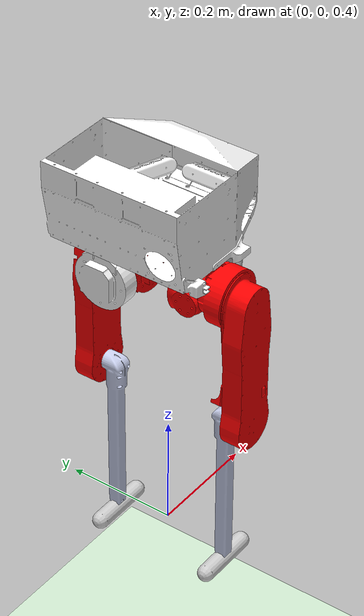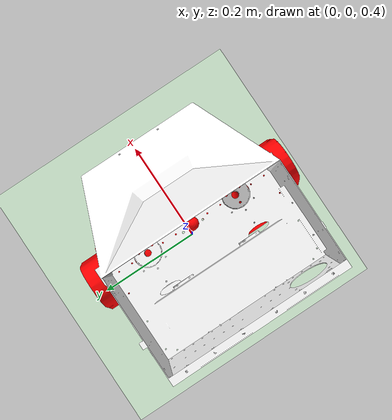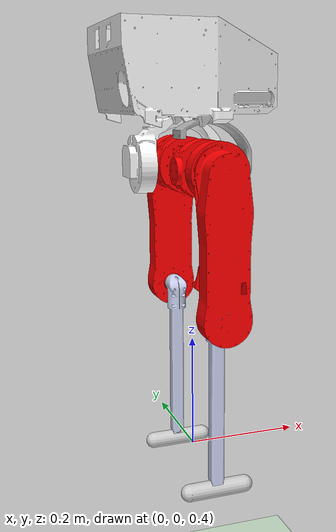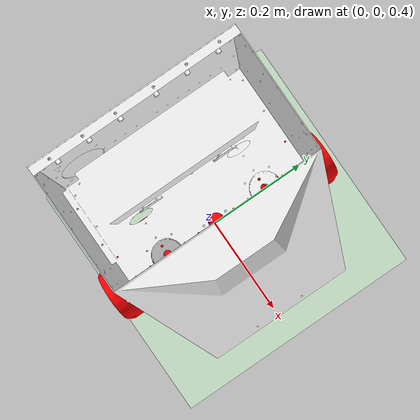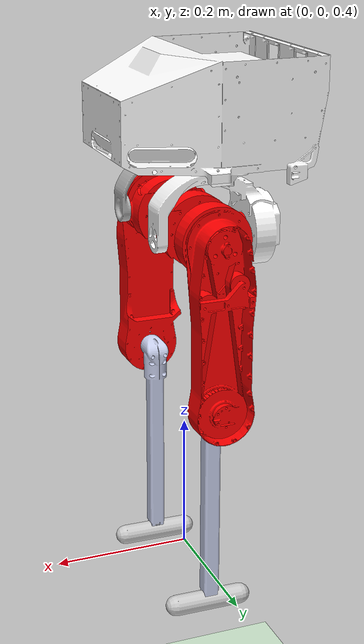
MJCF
<mujoco model="biped">
  <compiler angle="radian" meshdir="../meshes/" autolimits="true"/>
  <option integrator="RK4"/>
  <default/>
  <asset>
    <mesh name="base_link" file="base_link_v2.STL"/>
    <mesh name="R_HIP" file="R_HIP.STL"/>
    <mesh name="R_SHOULDER" file="R_SHOULDER.STL"/>
    <mesh name="R_UPPER_LEG" file="R_UPPER_LEG.STL"/>
    <mesh name="R_LOWER_LEG" file="R_LOWER_LEG.STL"/>
    <mesh name="R_FOOT" file="R_FOOT.STL"/>
    <mesh name="L_HIP" file="L_HIP.STL"/>
    <mesh name="L_SHOULDER" file="L_SHOULDER.STL"/>
    <mesh name="L_UPPER_LEG" file="L_UPPER_LEG.STL"/>
    <mesh name="L_LOWER_LEG" file="L_LOWER_LEG.STL"/>
    <mesh name="L_FOOT" file="L_FOOT.STL"/>

    <texture type="skybox" builtin="gradient" width="128" height="128" rgb1=".4 .6 .8" rgb2="0 0 0"/>

    <hfield name="hill" nrow="400" ncol="400" size="8 8 1 1"/>

    <texture builtin="checker" height="100" name="texplane" rgb1="0.14 0.31 0.27" rgb2="0.47 0.63 0.6" type="2d" width="100"/>
    <material name="MatPlane" reflectance="0.5" shininess="1" specular="1" texrepeat="60 60"  texture="texplane"/>

  </asset>

    <equality>
		<weld body1="base_link" solimp="1.0 1.0 1.0" solref="0.06 1"></weld>
	</equality>

  <sensor>
    <gyro name="gyro" site="imu_location" />
    <accelerometer name="accelerometer" site="imu_location" />
  </sensor>

  <worldbody>
    <light cutoff="100" diffuse="1 1 1" dir="-0 0 -1.3" directional="true" exponent="1" pos="0 0 1.3" specular=".1 .1 .1"/>
    <geom name="floor" friction="1 .1 .1" condim="3" material="MatPlane" pos="0 0 0" rgba="0.8 0.9 0.8 1" size="40 40 0.01" type="plane"/>

    <body name="base_link" pos="0.0 0.0 1.0">
      <inertial pos="-0.1048 0 0.068" quat="1. 0. 0. 0." mass="3.272" diaginertia="0.018 0.030 0.026" />
      <geom name="base_link" type="mesh" contype="2" rgba="1 1 1 1" mesh="base_link"/>
      <joint armature="0" damping="0" limited="false" name="root" pos="0 0 0" stiffness="0" type="free"/>
      <site name="imu_location" pos="0 0 0" euler="-3.141592 0 0" size="0.01" type="sphere" rgba="1 0 0 1"/>

      <body name="L_HIP" pos="0 0.07 -0.005">
        <inertial pos="-0.0542 0 -0.072" mass="0.624" diaginertia="0.0018 0.001 0.001"/>
        <joint name="L_YAW" pos="0 0 0" axis="0 0 1" limited="true" range="-0.3 0.3"/>
        <geom name="L_HIP" type="mesh" contype="2" rgba="1 1 1 1" mesh="L_HIP"/>

        <body name="L_SHOULDER" pos="0.005 0 -0.086">
          <inertial pos="-0.0020134 -0.022813 -0.00077458" quat="0.5 0.5 0.5 0.5" mass="0.524" diaginertia="0.00068 0.00048 0.0003"/>
          <joint name="L_HAA" pos="0 0 0" axis="1 0 0" limited="true" range="-0.25 0.25"/>
          <geom name="L_SHOULDER" type="mesh" contype="2" rgba="1 0 0 1" mesh="L_SHOULDER"/>

          <body name="L_UPPER_LEG" pos="0 0 0">
            <inertial pos="3.4626e-05 0.058 -0.054" mass="0.88" diaginertia="0.008 0.008 0.001"/>
            <joint name="L_HFE" pos="0 0 0" axis="0 1 0" limited="true" range="-1.5 1.5"/>
            <geom name="L_UPPER_LEG" type="mesh" contype="2"  rgba="1 0 0 1" mesh="L_UPPER_LEG"/>

            <body name="L_LOWER_LEG" pos="0 0.0589 -0.23405">
              <inertial pos="-1.356e-05 -0.017 -0.15" mass="0.118" diaginertia="0.001 0.001 1e-05"/>
              <joint name="L_KFE" pos="0 0 0" axis="0 1 0" limited="true" range="-2.2 -0.1"/>
              <geom name="L_LOWER_LEG" type="mesh" contype="2" rgba="0.792157 0.819608 0.933333 1" mesh="L_LOWER_LEG"/>

              <body name="L_FOOT" pos="0.0019 -0.0173 -0.30326">
                <inertial pos="-0.00185 -4.9998e-05 -0.0083528" quat="0.710914 0 0.703279 0" mass="0.03134" diaginertia="3.39896e-05 3.35525e-05 1.53506e-06"/>
                <joint name="L_ANKLE" pos="0 0 0" axis="0 1 0" limited="true" range="-0.7 0.7"/>
                <geom name="L_FOOT" friction="1. 0.3 0.3" size="0.015 0.05" pos="0 0 -0.01" quat="0.710914 0 0.703279 0"  type="capsule" rgba="0.8 0.8 0.8 1"/>
              </body> <!--  L_FOOT -->
            </body> <!--  L_LOWER_LEG -->
          </body> <!--  L_UPPER_LEG -->
        </body> <!--  L_SHOULDER -->
      </body> <!--  L_HIP -->

      <body name="R_HIP" pos="0 -0.07 -0.005">
        <inertial pos="-0.0542 0 -0.072" mass="0.624" diaginertia="0.0018 0.001 0.001"/>
        <joint name="R_YAW" pos="0 0 0" axis="0 0 1" limited="true" range="-0.3 0.3"/>
        <geom name="R_HIP" type="mesh" contype="2" rgba="0.69804 0.69804 0.69804 1" mesh="R_HIP"/>

        <body name="R_SHOULDER" pos="0.005 0 -0.086">
          <inertial pos="-0.0020134 0.022813 -0.00077458" quat="0.5 0.5 0.5 0.5" mass="0.524" diaginertia="0.00068 0.00048 0.0003"/>
          <joint name="R_HAA" pos="0 0 0" axis="1 0 0" limited="true" range="-0.25 0.25"/>
          <geom name="R_SHOULDER" type="mesh" contype="2" rgba="1 0 0 1" mesh="R_SHOULDER"/>

          <body name="R_UPPER_LEG" pos="0 0 0">
            <inertial pos="0 -0.058 -0.054" quat="1. 0. 0. 0." mass="0.88" diaginertia="0.008 0.008 0.001"/>
            <joint name="R_HFE" pos="0 0 0" axis="0 1 0" limited="true" range="-1.5 1.5"/>
            <geom name="R_UPPER_LEG" type="mesh" contype="2" rgba="1 0 0 1" mesh="R_UPPER_LEG"/>

            <body name="R_LOWER_LEG" pos="0 -0.0584 -0.23405">
              <inertial pos="0 0.017 -0.15" quat="1. 0. 0. 0." mass="0.118" diaginertia="0.001 0.001 1e-05"/>
              <joint name="R_KFE" pos="0 0 0" axis="0 1 0" limited="true" range="-2.2 -0.1"/>
              <geom name="R_LOWER_LEG" type="mesh" contype="2" rgba="0.792157 0.819608 0.933333 1" mesh="R_LOWER_LEG"/>

              <body name="R_FOOT" pos="0.0019 0.0173 -0.30326">
                <inertial pos="-0.00185 4.9998e-05 -0.0083528" quat="0.710914 0 0.703279 0" mass="0.03134" diaginertia="3.39896e-05 3.35525e-05 1.53506e-06"/>
                <joint name="R_ANKLE" pos="0 0 0" axis="0 1 0" limited="true" range="-0.7 0.7"/>
                <geom name="R_FOOT" friction="1. 0.3 0.3" size="0.015 0.05" pos="0 0 -0.01" quat="0.710914 0 0.703279 0"  type="capsule" rgba="0.8 0.8 0.8 1"/>
              </body> <!--  R_FOOT -->
            </body> <!--  R_LOWER_LEG -->
          </body> <!--  R_UPPER_LEG -->
        </body> <!--  R_SHOULDER -->
      </body> <!--  R_HIP -->

    </body> <!--  base_link -->
  </worldbody>

   <actuator>

        <motor gear="1"  joint="L_YAW" name="L_YAW"/>
            <velocity gear="1" joint="L_YAW" name="L_YAW_VEL" kv="0.5" />

        <motor gear="1"  joint="L_HAA" name="L_HAA"/>
            <velocity gear="1" joint="L_HAA" name="L_HAA_VEL" kv="3.18" />

        <motor gear="1"  joint="L_HFE" name="L_HFE"/>
            <velocity gear="1" joint="L_HFE" name="L_HFE_VEL" kv="3.18" />

        <motor gear="1"  joint="L_KFE" name="L_KFE"/>
            <velocity gear="1" joint="L_KFE" name="L_KFE_VEL" kv="0.95" />

        <motor gear="1"  joint="L_ANKLE" name="L_ANKLE"/>
            <velocity gear="1" joint="L_ANKLE" name="L_ANKLE_VEL" kv="0.005" />

        <motor gear="1"  joint="R_YAW" name="R_YAW"/>
            <velocity gear="1" joint="R_YAW" name="R_YAW_VEL" kv="0.5" />

        <motor gear="1"  joint="R_HAA" name="R_HAA"/>
            <velocity gear="1" joint="R_HAA" name="R_HAA_VEL" kv="3.18" />

        <motor gear="1"  joint="R_HFE" name="R_HFE"/>
            <velocity gear="1" joint="R_HFE" name="R_HFE_VEL" kv="3.18" />

        <motor gear="1"  joint="R_KFE" name="R_KFE"/>
            <velocity gear="1" joint="R_KFE" name="R_KFE_VEL" kv="0.95" />

        <motor gear="1"  joint="R_ANKLE" name="R_ANKLE"/>
            <velocity gear="1" joint="R_ANKLE" name="R_ANKLE_VEL" kv="0.005" />
    </actuator>

</mujoco>
